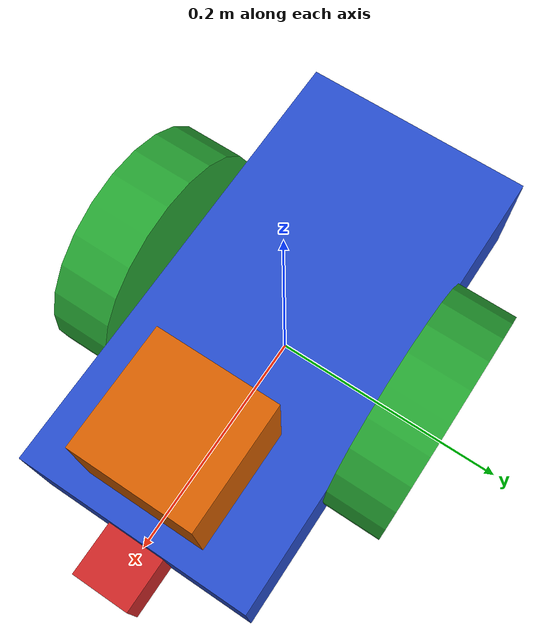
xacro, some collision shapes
<?xml version="1.0" encoding="UTF-8"?>

<robot xmlns:xacro="http://www.ros.org/wiki/xacro" name="udacity_bot">

  <xacro:include filename="$(find udacity_bot)/urdf/udacity_bot.gazebo" />

  <link name="robot_footprint"></link>

  <joint name="robot_footprint_joint" type="fixed">
    <origin xyz="0 0 0" rpy="0 0 0" />
    <parent link="robot_footprint"/>
    <child link="chassis" />
  </joint>

<!-- THE CHASSIS -->

  <link name='chassis'>
    <pose>0 0 0.1 0 0 0</pose>

    <inertial>
      <mass value="15.0"/>
      <origin xyz="0 0 0" rpy=" 0 0 0"/>
      <inertia
          ixx="0.1" ixy="0" ixz="0"
          iyy="0.1" iyz="0"
          izz="0.1"
      />
    </inertial>

    <collision name='collision'>
      <origin xyz="0 0 0.02" rpy=" 0 0 0"/>
      <geometry>
        <box size=".4 .2 .1"/>
      </geometry>
    </collision>

    <visual name='chassis_visual'>
      <origin xyz="0 0 0.02" rpy=" 0 0 0"/>
      <geometry>
        <box size=".4 .2 .1"/>
      </geometry>
    </visual>

    <collision name='back_caster_collision'>
      <origin xyz="-0.15 0 -0.01" rpy=" 0 0 0"/>
      <geometry>
        <sphere radius="0.049"/>
      </geometry>
      <surface>
        <friction>
          <ode>
            <mu>0</mu>
            <mu2>0</mu2>
            <slip1>1.0</slip1>
            <slip2>1.0</slip2>
          </ode>
        </friction>
      </surface>
    </collision>

    <visual name='back_caster_visual'>
      <origin xyz="-0.15 0 -0.01" rpy=" 0 0 0"/>
      <geometry>
        <sphere radius="0.049"/>
      </geometry>
    </visual>

    <collision name='front_caster_collision'>
      <origin xyz="0.15 0 -0.01" rpy=" 0 0 0"/>
      <geometry>
        <sphere radius="0.049"/>
      </geometry>
      <surface>
        <friction>
          <ode>
            <mu>0</mu>
            <mu2>0</mu2>
            <slip1>1.0</slip1>
            <slip2>1.0</slip2>
          </ode>
        </friction>
      </surface>
    </collision>

    <visual name='front_caster_visual'>
      <origin xyz="0.15 0 -0.01" rpy=" 0 0 0"/>
      <geometry>
        <sphere radius="0.049"/>
      </geometry>
    </visual>

  </link>

<!-- THE LEFT WHEEL -->

   <link name="left_wheel">
      <inertial>
         <mass value="5.0" />
         <origin xyz="0 0 0" rpy=" 0 1.5707 1.5707" />
         <inertia ixx="0.1" ixy="0" ixz="0" iyy="0.1" iyz="0" izz="0.1" />
      </inertial>
      <collision name="left_wheel_collision">
         <origin xyz="0 0 0" rpy=" 0 1.5707 1.5707" />
         <geometry>
            <cylinder length="0.0499" radius="0.1" />
         </geometry>
      </collision>
      <visual name="left_wheel_visual">
         <origin xyz="0 0 0" rpy=" 0 1.5707 1.5707" />
         <geometry>
            <cylinder length="0.0499" radius="0.1" />
         </geometry>
         <material name="green"/>
      </visual>
   </link>
   <joint type="continuous" name="left_wheel_hinge">
      <origin xyz="0 0.125 0.041" rpy="0 0 0" />
      <child link="left_wheel" />
      <parent link="chassis" />
      <axis xyz="0 1 0" rpy="0 0 0" />
      <limit effort="10000" velocity="1000" />
      <joint_properties damping="1.0" friction="1.0" />
   </joint>

<!-- THE RIGHT WHEEL -->

   <link name="right_wheel">
      <inertial>
         <mass value="5.0" />
         <origin xyz="0 0 0" rpy=" 0 1.5707 1.5707" />
         <inertia ixx="0.1" ixy="0" ixz="0" iyy="0.1" iyz="0" izz="0.1" />
      </inertial>
      <collision name="right_wheel_collision">
         <origin xyz="0 0 0" rpy=" 0 1.5707 1.5707" />
         <geometry>
            <cylinder length="0.0499" radius="0.1" />
         </geometry>
      </collision>
      <visual name="right_wheel_visual">
         <origin xyz="0 0 0" rpy=" 0 1.5707 1.5707" />
         <geometry>
            <cylinder length="0.0499" radius="0.1" />
         </geometry>
         <material name="green"/>
      </visual>
   </link>
   <joint type="continuous" name="right_wheel_hinge">
      <origin xyz="0 -0.125 0.041" rpy="0 0 0" />
      <child link="right_wheel" />
      <parent link="chassis" />
      <axis xyz="0 -1 0" rpy="0 0 0" />
      <limit effort="10000" velocity="1000" />
      <joint_properties damping="1.0" friction="1.0" />
   </joint>

<!-- THE CAMERA -->

  <joint name="camera_joint" type="fixed">
    <axis xyz="1 0 0" />
    <origin xyz="0.22 0 0.012" rpy="0 0 0" />
    <parent link="chassis" />
    <child link="camera" />
  </joint>

  <link name="camera">
    <collision>
      <origin xyz="0 0 0" rpy="0 0 0"/>
      <geometry>
	<box size="0.05 0.05 0.05"/>
      </geometry>
    </collision>

    <visual>
      <geometry>
	<box size="0.05 0.05 0.05"/>
      </geometry>
    </visual>

    <inertial>
      <mass value="0.1" />
      <origin xyz="0.22 0 0.012" rpy="0 0 0"/>
      <inertia ixx="1e-6" ixy="0" ixz="0" iyy="1e-6" iyz="0" izz="1e-6" />
    </inertial>
  </link>

<!-- THE LASER RANGEFINDER -->

  <joint name="hokuyo_joint" type="fixed">
    <axis xyz="1 0 1" />
    <origin xyz="0.13 0 0.1" rpy="0 0 0" />
    <parent link="chassis" />
    <child link="hokuyo" />
  </joint>

  <link name="hokuyo">
    <collision>
      <origin xyz="0 0 0" rpy="0 0 0"/>
      <geometry>
	<box size="0.1 0.1 0.1"/>
      </geometry>
    </collision>

    <visual>
      <geometry>
	<mesh filename="package://udacity_bot/meshes/hokuyo.dae" />
      </geometry>
    </visual>

    <inertial>
      <mass value="0.1" />
      <origin xyz="0.13 0 0.1" rpy="0 0 0"/>
      <inertia ixx="1e-6" ixy="0" ixz="0" iyy="1e-6" iyz="0" izz="1e-6" />
    </inertial>
  </link>

</robot>
